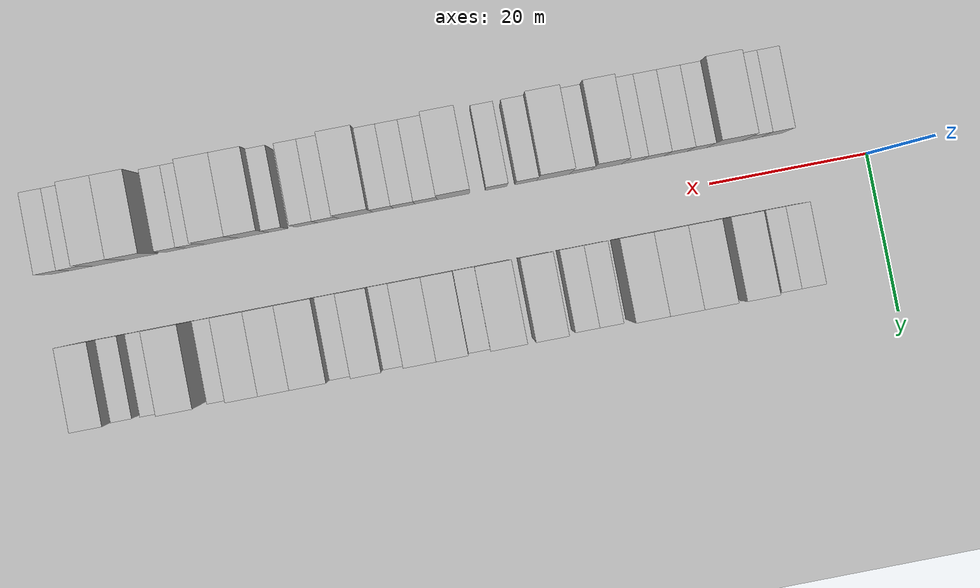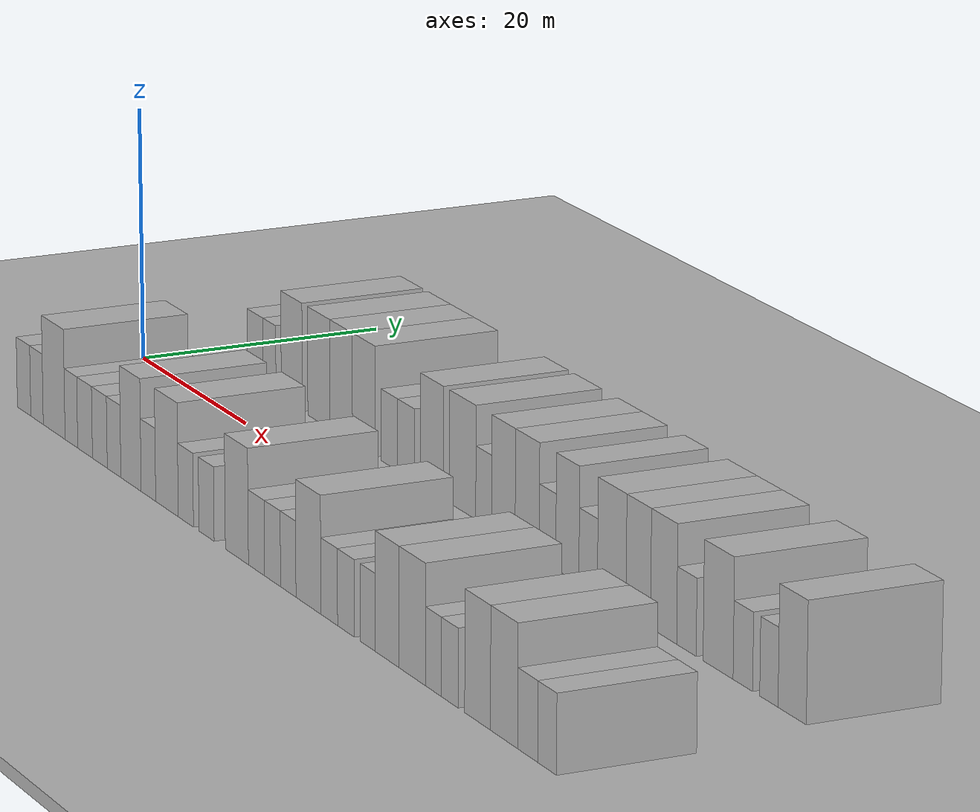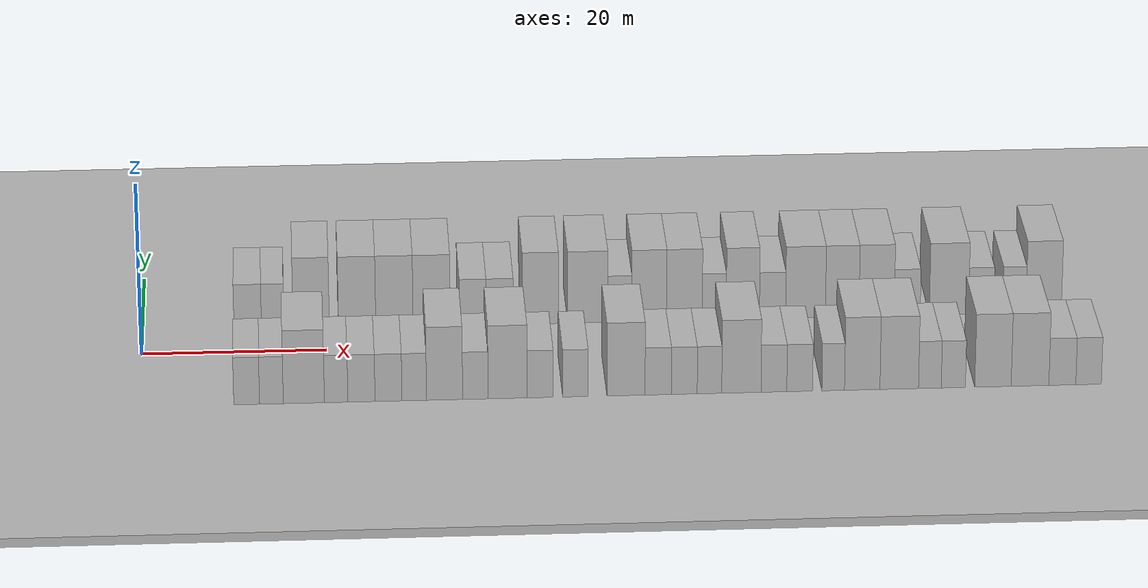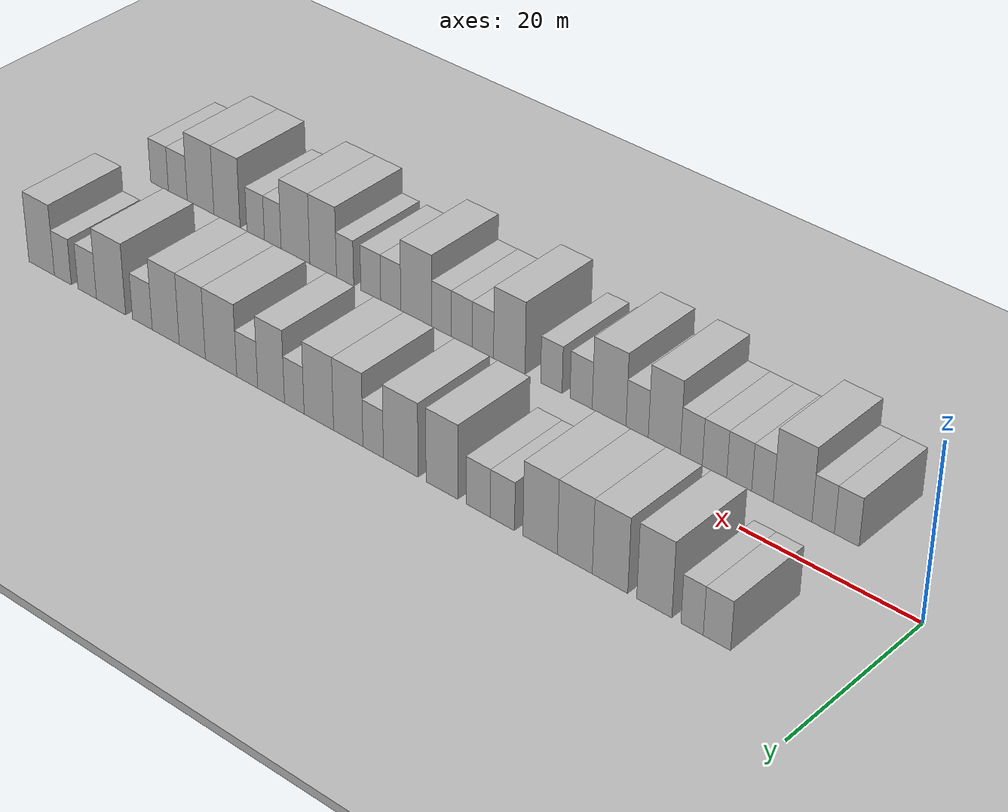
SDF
<sdf version="1.6">
 <world name="default">
  <include><name>ground_plane_1</name><uri>model://HANNAS_ground_plane</uri></include>
  <include>
   <name>ground_plane_2</name>
   <uri>model://HANNAS_ground_plane</uri>
   <pose>100 0 0  0 0 0</pose>
  </include>
  <model name="building_1">
   <static>1</static>
   <pose>11.4937 9.5000 0 0.000000 0.000000 1.570796</pose>
   <link name="link">
    <pose>0 0 3.00 0 0 0</pose>
    <collision name="collision"><geometry><box><size>10.0000 2.9875 6.0000</size></box></geometry></collision>
    <visual name="visual">
     <cast_shadows>0</cast_shadows>
     <geometry><box><size>10.0000 2.9875 6.0000</size></box></geometry>
     <material>
      <script>
       <uri>model://HANNAS_wall/materials/scripts</uri>
       <uri>model://HANNAS_wall/materials/textures</uri>
       <name>vrc/HANNAS_wall</name>
      </script>
     </material>
    </visual>
   </link>
  </model>
  <model name="building_2">
   <static>1</static>
   <pose>14.2155 9.5000 0 0.000000 0.000000 1.570796</pose>
   <link name="link">
    <pose>0 0 3.00 0 0 0</pose>
    <collision name="collision"><geometry><box><size>10.0000 2.4561 6.0000</size></box></geometry></collision>
    <visual name="visual">
     <cast_shadows>0</cast_shadows>
     <geometry><box><size>10.0000 2.4561 6.0000</size></box></geometry>
     <material>
      <script>
       <uri>model://HANNAS_wall/materials/scripts</uri>
       <uri>model://HANNAS_wall/materials/textures</uri>
       <name>vrc/HANNAS_wall</name>
      </script>
     </material>
    </visual>
   </link>
  </model>
  <model name="building_3">
   <static>1</static>
   <pose>18.4167 9.5000 0 0.000000 0.000000 1.570796</pose>
   <link name="link">
    <pose>0 0 4.50 0 0 0</pose>
    <collision name="collision"><geometry><box><size>10.0000 3.9462 9.0000</size></box></geometry></collision>
    <visual name="visual">
     <cast_shadows>0</cast_shadows>
     <geometry><box><size>10.0000 3.9462 9.0000</size></box></geometry>
     <material>
      <script>
       <uri>model://HANNAS_wall/materials/scripts</uri>
       <uri>model://HANNAS_wall/materials/textures</uri>
       <name>vrc/HANNAS_wall</name>
      </script>
     </material>
    </visual>
   </link>
  </model>
  <model name="building_4">
   <static>1</static>
   <pose>23.4204 9.5000 0 0.000000 0.000000 1.570796</pose>
   <link name="link">
    <pose>0 0 4.50 0 0 0</pose>
    <collision name="collision"><geometry><box><size>10.0000 4.0612 9.0000</size></box></geometry></collision>
    <visual name="visual">
     <cast_shadows>0</cast_shadows>
     <geometry><box><size>10.0000 4.0612 9.0000</size></box></geometry>
     <material>
      <script>
       <uri>model://HANNAS_wall/materials/scripts</uri>
       <uri>model://HANNAS_wall/materials/textures</uri>
       <name>vrc/HANNAS_wall</name>
      </script>
     </material>
    </visual>
   </link>
  </model>
  <model name="building_5">
   <static>1</static>
   <pose>27.4896 9.5000 0 0.000000 0.000000 1.570796</pose>
   <link name="link">
    <pose>0 0 4.50 0 0 0</pose>
    <collision name="collision"><geometry><box><size>10.0000 4.0774 9.0000</size></box></geometry></collision>
    <visual name="visual">
     <cast_shadows>0</cast_shadows>
     <geometry><box><size>10.0000 4.0774 9.0000</size></box></geometry>
     <material>
      <script>
       <uri>model://HANNAS_wall/materials/scripts</uri>
       <uri>model://HANNAS_wall/materials/textures</uri>
       <name>vrc/HANNAS_wall</name>
      </script>
     </material>
    </visual>
   </link>
  </model>
  <model name="building_6">
   <static>1</static>
   <pose>31.5653 9.5000 0 0.000000 0.000000 1.570796</pose>
   <link name="link">
    <pose>0 0 4.50 0 0 0</pose>
    <collision name="collision"><geometry><box><size>10.0000 4.0740 9.0000</size></box></geometry></collision>
    <visual name="visual">
     <cast_shadows>0</cast_shadows>
     <geometry><box><size>10.0000 4.0740 9.0000</size></box></geometry>
     <material>
      <script>
       <uri>model://HANNAS_wall/materials/scripts</uri>
       <uri>model://HANNAS_wall/materials/textures</uri>
       <name>vrc/HANNAS_wall</name>
      </script>
     </material>
    </visual>
   </link>
  </model>
  <model name="building_7">
   <static>1</static>
   <pose>36.0594 9.5000 0 0.000000 0.000000 1.570796</pose>
   <link name="link">
    <pose>0 0 3.00 0 0 0</pose>
    <collision name="collision"><geometry><box><size>10.0000 2.9140 6.0000</size></box></geometry></collision>
    <visual name="visual">
     <cast_shadows>0</cast_shadows>
     <geometry><box><size>10.0000 2.9140 6.0000</size></box></geometry>
     <material>
      <script>
       <uri>model://HANNAS_wall/materials/scripts</uri>
       <uri>model://HANNAS_wall/materials/textures</uri>
       <name>vrc/HANNAS_wall</name>
      </script>
     </material>
    </visual>
   </link>
  </model>
  <model name="building_8">
   <static>1</static>
   <pose>38.9993 9.5000 0 0.000000 0.000000 1.570796</pose>
   <link name="link">
    <pose>0 0 3.00 0 0 0</pose>
    <collision name="collision"><geometry><box><size>10.0000 2.9658 6.0000</size></box></geometry></collision>
    <visual name="visual">
     <cast_shadows>0</cast_shadows>
     <geometry><box><size>10.0000 2.9658 6.0000</size></box></geometry>
     <material>
      <script>
       <uri>model://HANNAS_wall/materials/scripts</uri>
       <uri>model://HANNAS_wall/materials/textures</uri>
       <name>vrc/HANNAS_wall</name>
      </script>
     </material>
    </visual>
   </link>
  </model>
  <model name="building_9">
   <static>1</static>
   <pose>43.4593 9.5000 0 0.000000 0.000000 1.570796</pose>
   <link name="link">
    <pose>0 0 4.50 0 0 0</pose>
    <collision name="collision"><geometry><box><size>10.0000 3.9543 9.0000</size></box></geometry></collision>
    <visual name="visual">
     <cast_shadows>0</cast_shadows>
     <geometry><box><size>10.0000 3.9543 9.0000</size></box></geometry>
     <material>
      <script>
       <uri>model://HANNAS_wall/materials/scripts</uri>
       <uri>model://HANNAS_wall/materials/textures</uri>
       <name>vrc/HANNAS_wall</name>
      </script>
     </material>
    </visual>
   </link>
  </model>
  <model name="building_10">
   <static>1</static>
   <pose>48.6359 9.5000 0 0.000000 0.000000 1.570796</pose>
   <link name="link">
    <pose>0 0 4.50 0 0 0</pose>
    <collision name="collision"><geometry><box><size>10.0000 4.3989 9.0000</size></box></geometry></collision>
    <visual name="visual">
     <cast_shadows>0</cast_shadows>
     <geometry><box><size>10.0000 4.3989 9.0000</size></box></geometry>
     <material>
      <script>
       <uri>model://HANNAS_wall/materials/scripts</uri>
       <uri>model://HANNAS_wall/materials/textures</uri>
       <name>vrc/HANNAS_wall</name>
      </script>
     </material>
    </visual>
   </link>
  </model>
  <model name="building_11">
   <static>1</static>
   <pose>52.1533 9.5000 0 0.000000 0.000000 1.570796</pose>
   <link name="link">
    <pose>0 0 3.00 0 0 0</pose>
    <collision name="collision"><geometry><box><size>10.0000 2.6358 6.0000</size></box></geometry></collision>
    <visual name="visual">
     <cast_shadows>0</cast_shadows>
     <geometry><box><size>10.0000 2.6358 6.0000</size></box></geometry>
     <material>
      <script>
       <uri>model://HANNAS_wall/materials/scripts</uri>
       <uri>model://HANNAS_wall/materials/textures</uri>
       <name>vrc/HANNAS_wall</name>
      </script>
     </material>
    </visual>
   </link>
  </model>
  <model name="building_12">
   <static>1</static>
   <pose>55.3849 9.5000 0 0.000000 0.000000 1.570796</pose>
   <link name="link">
    <pose>0 0 4.50 0 0 0</pose>
    <collision name="collision"><geometry><box><size>10.0000 3.8273 9.0000</size></box></geometry></collision>
    <visual name="visual">
     <cast_shadows>0</cast_shadows>
     <geometry><box><size>10.0000 3.8273 9.0000</size></box></geometry>
     <material>
      <script>
       <uri>model://HANNAS_wall/materials/scripts</uri>
       <uri>model://HANNAS_wall/materials/textures</uri>
       <name>vrc/HANNAS_wall</name>
      </script>
     </material>
    </visual>
   </link>
  </model>
  <model name="building_13">
   <static>1</static>
   <pose>59.2486 9.5000 0 0.000000 0.000000 1.570796</pose>
   <link name="link">
    <pose>0 0 4.50 0 0 0</pose>
    <collision name="collision"><geometry><box><size>10.0000 3.9002 9.0000</size></box></geometry></collision>
    <visual name="visual">
     <cast_shadows>0</cast_shadows>
     <geometry><box><size>10.0000 3.9002 9.0000</size></box></geometry>
     <material>
      <script>
       <uri>model://HANNAS_wall/materials/scripts</uri>
       <uri>model://HANNAS_wall/materials/textures</uri>
       <name>vrc/HANNAS_wall</name>
      </script>
     </material>
    </visual>
   </link>
  </model>
  <model name="building_14">
   <static>1</static>
   <pose>62.5120 9.5000 0 0.000000 0.000000 1.570796</pose>
   <link name="link">
    <pose>0 0 3.00 0 0 0</pose>
    <collision name="collision"><geometry><box><size>10.0000 2.6267 6.0000</size></box></geometry></collision>
    <visual name="visual">
     <cast_shadows>0</cast_shadows>
     <geometry><box><size>10.0000 2.6267 6.0000</size></box></geometry>
     <material>
      <script>
       <uri>model://HANNAS_wall/materials/scripts</uri>
       <uri>model://HANNAS_wall/materials/textures</uri>
       <name>vrc/HANNAS_wall</name>
      </script>
     </material>
    </visual>
   </link>
  </model>
  <model name="building_15">
   <static>1</static>
   <pose>65.6415 9.5000 0 0.000000 0.000000 1.570796</pose>
   <link name="link">
    <pose>0 0 4.50 0 0 0</pose>
    <collision name="collision"><geometry><box><size>10.0000 3.6323 9.0000</size></box></geometry></collision>
    <visual name="visual">
     <cast_shadows>0</cast_shadows>
     <geometry><box><size>10.0000 3.6323 9.0000</size></box></geometry>
     <material>
      <script>
       <uri>model://HANNAS_wall/materials/scripts</uri>
       <uri>model://HANNAS_wall/materials/textures</uri>
       <name>vrc/HANNAS_wall</name>
      </script>
     </material>
    </visual>
   </link>
  </model>
  <model name="building_16">
   <static>1</static>
   <pose>68.8954 9.5000 0 0.000000 0.000000 1.570796</pose>
   <link name="link">
    <pose>0 0 3.00 0 0 0</pose>
    <collision name="collision"><geometry><box><size>10.0000 2.8755 6.0000</size></box></geometry></collision>
    <visual name="visual">
     <cast_shadows>0</cast_shadows>
     <geometry><box><size>10.0000 2.8755 6.0000</size></box></geometry>
     <material>
      <script>
       <uri>model://HANNAS_wall/materials/scripts</uri>
       <uri>model://HANNAS_wall/materials/textures</uri>
       <name>vrc/HANNAS_wall</name>
      </script>
     </material>
    </visual>
   </link>
  </model>
  <model name="building_17">
   <static>1</static>
   <pose>72.5236 9.5000 0 0.000000 0.000000 1.570796</pose>
   <link name="link">
    <pose>0 0 4.50 0 0 0</pose>
    <collision name="collision"><geometry><box><size>10.0000 4.3809 9.0000</size></box></geometry></collision>
    <visual name="visual">
     <cast_shadows>0</cast_shadows>
     <geometry><box><size>10.0000 4.3809 9.0000</size></box></geometry>
     <material>
      <script>
       <uri>model://HANNAS_wall/materials/scripts</uri>
       <uri>model://HANNAS_wall/materials/textures</uri>
       <name>vrc/HANNAS_wall</name>
      </script>
     </material>
    </visual>
   </link>
  </model>
  <model name="building_18">
   <static>1</static>
   <pose>76.5592 9.5000 0 0.000000 0.000000 1.570796</pose>
   <link name="link">
    <pose>0 0 4.50 0 0 0</pose>
    <collision name="collision"><geometry><box><size>10.0000 3.6902 9.0000</size></box></geometry></collision>
    <visual name="visual">
     <cast_shadows>0</cast_shadows>
     <geometry><box><size>10.0000 3.6902 9.0000</size></box></geometry>
     <material>
      <script>
       <uri>model://HANNAS_wall/materials/scripts</uri>
       <uri>model://HANNAS_wall/materials/textures</uri>
       <name>vrc/HANNAS_wall</name>
      </script>
     </material>
    </visual>
   </link>
  </model>
  <model name="building_19">
   <static>1</static>
   <pose>80.3442 9.5000 0 0.000000 0.000000 1.570796</pose>
   <link name="link">
    <pose>0 0 4.50 0 0 0</pose>
    <collision name="collision"><geometry><box><size>10.0000 3.8799 9.0000</size></box></geometry></collision>
    <visual name="visual">
     <cast_shadows>0</cast_shadows>
     <geometry><box><size>10.0000 3.8799 9.0000</size></box></geometry>
     <material>
      <script>
       <uri>model://HANNAS_wall/materials/scripts</uri>
       <uri>model://HANNAS_wall/materials/textures</uri>
       <name>vrc/HANNAS_wall</name>
      </script>
     </material>
    </visual>
   </link>
  </model>
  <model name="building_20">
   <static>1</static>
   <pose>83.7181 9.5000 0 0.000000 0.000000 1.570796</pose>
   <link name="link">
    <pose>0 0 3.00 0 0 0</pose>
    <collision name="collision"><geometry><box><size>10.0000 2.8679 6.0000</size></box></geometry></collision>
    <visual name="visual">
     <cast_shadows>0</cast_shadows>
     <geometry><box><size>10.0000 2.8679 6.0000</size></box></geometry>
     <material>
      <script>
       <uri>model://HANNAS_wall/materials/scripts</uri>
       <uri>model://HANNAS_wall/materials/textures</uri>
       <name>vrc/HANNAS_wall</name>
      </script>
     </material>
    </visual>
   </link>
  </model>
  <model name="building_21">
   <static>1</static>
   <pose>88.3135 9.5000 0 0.000000 0.000000 1.570796</pose>
   <link name="link">
    <pose>0 0 4.50 0 0 0</pose>
    <collision name="collision"><geometry><box><size>10.0000 4.3228 9.0000</size></box></geometry></collision>
    <visual name="visual">
     <cast_shadows>0</cast_shadows>
     <geometry><box><size>10.0000 4.3228 9.0000</size></box></geometry>
     <material>
      <script>
       <uri>model://HANNAS_wall/materials/scripts</uri>
       <uri>model://HANNAS_wall/materials/textures</uri>
       <name>vrc/HANNAS_wall</name>
      </script>
     </material>
    </visual>
   </link>
  </model>
  <model name="building_22">
   <static>1</static>
   <pose>91.8621 9.5000 0 0.000000 0.000000 1.570796</pose>
   <link name="link">
    <pose>0 0 3.00 0 0 0</pose>
    <collision name="collision"><geometry><box><size>10.0000 2.7743 6.0000</size></box></geometry></collision>
    <visual name="visual">
     <cast_shadows>0</cast_shadows>
     <geometry><box><size>10.0000 2.7743 6.0000</size></box></geometry>
     <material>
      <script>
       <uri>model://HANNAS_wall/materials/scripts</uri>
       <uri>model://HANNAS_wall/materials/textures</uri>
       <name>vrc/HANNAS_wall</name>
      </script>
     </material>
    </visual>
   </link>
  </model>
  <model name="building_23">
   <static>1</static>
   <pose>95.5293 9.5000 0 0.000000 0.000000 1.570796</pose>
   <link name="link">
    <pose>0 0 3.00 0 0 0</pose>
    <collision name="collision"><geometry><box><size>10.0000 2.5601 6.0000</size></box></geometry></collision>
    <visual name="visual">
     <cast_shadows>0</cast_shadows>
     <geometry><box><size>10.0000 2.5601 6.0000</size></box></geometry>
     <material>
      <script>
       <uri>model://HANNAS_wall/materials/scripts</uri>
       <uri>model://HANNAS_wall/materials/textures</uri>
       <name>vrc/HANNAS_wall</name>
      </script>
     </material>
    </visual>
   </link>
  </model>
  <model name="building_24">
   <static>1</static>
   <pose>98.7638 9.5000 0 0.000000 0.000000 1.570796</pose>
   <link name="link">
    <pose>0 0 4.50 0 0 0</pose>
    <collision name="collision"><geometry><box><size>10.0000 3.9090 9.0000</size></box></geometry></collision>
    <visual name="visual">
     <cast_shadows>0</cast_shadows>
     <geometry><box><size>10.0000 3.9090 9.0000</size></box></geometry>
     <material>
      <script>
       <uri>model://HANNAS_wall/materials/scripts</uri>
       <uri>model://HANNAS_wall/materials/textures</uri>
       <name>vrc/HANNAS_wall</name>
      </script>
     </material>
    </visual>
   </link>
  </model>
  <model name="building_52">
   <static>1</static>
   <pose>11.3659 -9.5000 0 0.000000 0.000000 1.570796</pose>
   <link name="link">
    <pose>0 0 3.00 0 0 0</pose>
    <collision name="collision"><geometry><box><size>10.0000 2.7319 6.0000</size></box></geometry></collision>
    <visual name="visual">
     <cast_shadows>0</cast_shadows>
     <geometry><box><size>10.0000 2.7319 6.0000</size></box></geometry>
     <material>
      <script>
       <uri>model://HANNAS_wall/materials/scripts</uri>
       <uri>model://HANNAS_wall/materials/textures</uri>
       <name>vrc/HANNAS_wall</name>
      </script>
     </material>
    </visual>
   </link>
  </model>
  <model name="building_53">
   <static>1</static>
   <pose>13.9911 -9.5000 0 0.000000 0.000000 1.570796</pose>
   <link name="link">
    <pose>0 0 3.00 0 0 0</pose>
    <collision name="collision"><geometry><box><size>10.0000 2.5186 6.0000</size></box></geometry></collision>
    <visual name="visual">
     <cast_shadows>0</cast_shadows>
     <geometry><box><size>10.0000 2.5186 6.0000</size></box></geometry>
     <material>
      <script>
       <uri>model://HANNAS_wall/materials/scripts</uri>
       <uri>model://HANNAS_wall/materials/textures</uri>
       <name>vrc/HANNAS_wall</name>
      </script>
     </material>
    </visual>
   </link>
  </model>
  <model name="building_54">
   <static>1</static>
   <pose>17.4318 -9.5000 0 0.000000 0.000000 1.570796</pose>
   <link name="link">
    <pose>0 0 4.50 0 0 0</pose>
    <collision name="collision"><geometry><box><size>10.0000 4.3627 9.0000</size></box></geometry></collision>
    <visual name="visual">
     <cast_shadows>0</cast_shadows>
     <geometry><box><size>10.0000 4.3627 9.0000</size></box></geometry>
     <material>
      <script>
       <uri>model://HANNAS_wall/materials/scripts</uri>
       <uri>model://HANNAS_wall/materials/textures</uri>
       <name>vrc/HANNAS_wall</name>
      </script>
     </material>
    </visual>
   </link>
  </model>
  <model name="building_55">
   <static>1</static>
   <pose>20.8571 -9.5000 0 0.000000 0.000000 1.570796</pose>
   <link name="link">
    <pose>0 0 3.00 0 0 0</pose>
    <collision name="collision"><geometry><box><size>10.0000 2.4880 6.0000</size></box></geometry></collision>
    <visual name="visual">
     <cast_shadows>0</cast_shadows>
     <geometry><box><size>10.0000 2.4880 6.0000</size></box></geometry>
     <material>
      <script>
       <uri>model://HANNAS_wall/materials/scripts</uri>
       <uri>model://HANNAS_wall/materials/textures</uri>
       <name>vrc/HANNAS_wall</name>
      </script>
     </material>
    </visual>
   </link>
  </model>
  <model name="building_56">
   <static>1</static>
   <pose>23.5439 -9.5000 0 0.000000 0.000000 1.570796</pose>
   <link name="link">
    <pose>0 0 3.00 0 0 0</pose>
    <collision name="collision"><geometry><box><size>10.0000 2.8854 6.0000</size></box></geometry></collision>
    <visual name="visual">
     <cast_shadows>0</cast_shadows>
     <geometry><box><size>10.0000 2.8854 6.0000</size></box></geometry>
     <material>
      <script>
       <uri>model://HANNAS_wall/materials/scripts</uri>
       <uri>model://HANNAS_wall/materials/textures</uri>
       <name>vrc/HANNAS_wall</name>
      </script>
     </material>
    </visual>
   </link>
  </model>
  <model name="building_57">
   <static>1</static>
   <pose>26.4178 -9.5000 0 0.000000 0.000000 1.570796</pose>
   <link name="link">
    <pose>0 0 3.00 0 0 0</pose>
    <collision name="collision"><geometry><box><size>10.0000 2.8624 6.0000</size></box></geometry></collision>
    <visual name="visual">
     <cast_shadows>0</cast_shadows>
     <geometry><box><size>10.0000 2.8624 6.0000</size></box></geometry>
     <material>
      <script>
       <uri>model://HANNAS_wall/materials/scripts</uri>
       <uri>model://HANNAS_wall/materials/textures</uri>
       <name>vrc/HANNAS_wall</name>
      </script>
     </material>
    </visual>
   </link>
  </model>
  <model name="building_58">
   <static>1</static>
   <pose>29.1541 -9.5000 0 0.000000 0.000000 1.570796</pose>
   <link name="link">
    <pose>0 0 3.00 0 0 0</pose>
    <collision name="collision"><geometry><box><size>10.0000 2.6103 6.0000</size></box></geometry></collision>
    <visual name="visual">
     <cast_shadows>0</cast_shadows>
     <geometry><box><size>10.0000 2.6103 6.0000</size></box></geometry>
     <material>
      <script>
       <uri>model://HANNAS_wall/materials/scripts</uri>
       <uri>model://HANNAS_wall/materials/textures</uri>
       <name>vrc/HANNAS_wall</name>
      </script>
     </material>
    </visual>
   </link>
  </model>
  <model name="building_59">
   <static>1</static>
   <pose>32.3824 -9.5000 0 0.000000 0.000000 1.570796</pose>
   <link name="link">
    <pose>0 0 4.50 0 0 0</pose>
    <collision name="collision"><geometry><box><size>10.0000 3.8461 9.0000</size></box></geometry></collision>
    <visual name="visual">
     <cast_shadows>0</cast_shadows>
     <geometry><box><size>10.0000 3.8461 9.0000</size></box></geometry>
     <material>
      <script>
       <uri>model://HANNAS_wall/materials/scripts</uri>
       <uri>model://HANNAS_wall/materials/textures</uri>
       <name>vrc/HANNAS_wall</name>
      </script>
     </material>
    </visual>
   </link>
  </model>
  <model name="building_60">
   <static>1</static>
   <pose>35.6603 -9.5000 0 0.000000 0.000000 1.570796</pose>
   <link name="link">
    <pose>0 0 3.00 0 0 0</pose>
    <collision name="collision"><geometry><box><size>10.0000 2.7098 6.0000</size></box></geometry></collision>
    <visual name="visual">
     <cast_shadows>0</cast_shadows>
     <geometry><box><size>10.0000 2.7098 6.0000</size></box></geometry>
     <material>
      <script>
       <uri>model://HANNAS_wall/materials/scripts</uri>
       <uri>model://HANNAS_wall/materials/textures</uri>
       <name>vrc/HANNAS_wall</name>
      </script>
     </material>
    </visual>
   </link>
  </model>
  <model name="building_61">
   <static>1</static>
   <pose>39.1015 -9.5000 0 0.000000 0.000000 1.570796</pose>
   <link name="link">
    <pose>0 0 4.50 0 0 0</pose>
    <collision name="collision"><geometry><box><size>10.0000 4.1725 9.0000</size></box></geometry></collision>
    <visual name="visual">
     <cast_shadows>0</cast_shadows>
     <geometry><box><size>10.0000 4.1725 9.0000</size></box></geometry>
     <material>
      <script>
       <uri>model://HANNAS_wall/materials/scripts</uri>
       <uri>model://HANNAS_wall/materials/textures</uri>
       <name>vrc/HANNAS_wall</name>
      </script>
     </material>
    </visual>
   </link>
  </model>
  <model name="building_62">
   <static>1</static>
   <pose>42.5727 -9.5000 0 0.000000 0.000000 1.570796</pose>
   <link name="link">
    <pose>0 0 3.00 0 0 0</pose>
    <collision name="collision"><geometry><box><size>10.0000 2.7698 6.0000</size></box></geometry></collision>
    <visual name="visual">
     <cast_shadows>0</cast_shadows>
     <geometry><box><size>10.0000 2.7698 6.0000</size></box></geometry>
     <material>
      <script>
       <uri>model://HANNAS_wall/materials/scripts</uri>
       <uri>model://HANNAS_wall/materials/textures</uri>
       <name>vrc/HANNAS_wall</name>
      </script>
     </material>
    </visual>
   </link>
  </model>
  <model name="building_63">
   <static>1</static>
   <pose>46.3197 -9.5000 0 0.000000 0.000000 1.570796</pose>
   <link name="link">
    <pose>0 0 3.00 0 0 0</pose>
    <collision name="collision"><geometry><box><size>10.0000 2.7242 6.0000</size></box></geometry></collision>
    <visual name="visual">
     <cast_shadows>0</cast_shadows>
     <geometry><box><size>10.0000 2.7242 6.0000</size></box></geometry>
     <material>
      <script>
       <uri>model://HANNAS_wall/materials/scripts</uri>
       <uri>model://HANNAS_wall/materials/textures</uri>
       <name>vrc/HANNAS_wall</name>
      </script>
     </material>
    </visual>
   </link>
  </model>
  <model name="building_64">
   <static>1</static>
   <pose>51.7155 -9.5000 0 0.000000 0.000000 1.570796</pose>
   <link name="link">
    <pose>0 0 4.50 0 0 0</pose>
    <collision name="collision"><geometry><box><size>10.0000 4.0674 9.0000</size></box></geometry></collision>
    <visual name="visual">
     <cast_shadows>0</cast_shadows>
     <geometry><box><size>10.0000 4.0674 9.0000</size></box></geometry>
     <material>
      <script>
       <uri>model://HANNAS_wall/materials/scripts</uri>
       <uri>model://HANNAS_wall/materials/textures</uri>
       <name>vrc/HANNAS_wall</name>
      </script>
     </material>
    </visual>
   </link>
  </model>
  <model name="building_65">
   <static>1</static>
   <pose>55.1573 -9.5000 0 0.000000 0.000000 1.570796</pose>
   <link name="link">
    <pose>0 0 3.00 0 0 0</pose>
    <collision name="collision"><geometry><box><size>10.0000 2.8162 6.0000</size></box></geometry></collision>
    <visual name="visual">
     <cast_shadows>0</cast_shadows>
     <geometry><box><size>10.0000 2.8162 6.0000</size></box></geometry>
     <material>
      <script>
       <uri>model://HANNAS_wall/materials/scripts</uri>
       <uri>model://HANNAS_wall/materials/textures</uri>
       <name>vrc/HANNAS_wall</name>
      </script>
     </material>
    </visual>
   </link>
  </model>
  <model name="building_66">
   <static>1</static>
   <pose>57.9385 -9.5000 0 0.000000 0.000000 1.570796</pose>
   <link name="link">
    <pose>0 0 3.00 0 0 0</pose>
    <collision name="collision"><geometry><box><size>10.0000 2.7462 6.0000</size></box></geometry></collision>
    <visual name="visual">
     <cast_shadows>0</cast_shadows>
     <geometry><box><size>10.0000 2.7462 6.0000</size></box></geometry>
     <material>
      <script>
       <uri>model://HANNAS_wall/materials/scripts</uri>
       <uri>model://HANNAS_wall/materials/textures</uri>
       <name>vrc/HANNAS_wall</name>
      </script>
     </material>
    </visual>
   </link>
  </model>
  <model name="building_67">
   <static>1</static>
   <pose>60.6240 -9.5000 0 0.000000 0.000000 1.570796</pose>
   <link name="link">
    <pose>0 0 3.00 0 0 0</pose>
    <collision name="collision"><geometry><box><size>10.0000 2.6246 6.0000</size></box></geometry></collision>
    <visual name="visual">
     <cast_shadows>0</cast_shadows>
     <geometry><box><size>10.0000 2.6246 6.0000</size></box></geometry>
     <material>
      <script>
       <uri>model://HANNAS_wall/materials/scripts</uri>
       <uri>model://HANNAS_wall/materials/textures</uri>
       <name>vrc/HANNAS_wall</name>
      </script>
     </material>
    </visual>
   </link>
  </model>
  <model name="building_68">
   <static>1</static>
   <pose>64.0348 -9.5000 0 0.000000 0.000000 1.570796</pose>
   <link name="link">
    <pose>0 0 4.50 0 0 0</pose>
    <collision name="collision"><geometry><box><size>10.0000 4.1970 9.0000</size></box></geometry></collision>
    <visual name="visual">
     <cast_shadows>0</cast_shadows>
     <geometry><box><size>10.0000 4.1970 9.0000</size></box></geometry>
     <material>
      <script>
       <uri>model://HANNAS_wall/materials/scripts</uri>
       <uri>model://HANNAS_wall/materials/textures</uri>
       <name>vrc/HANNAS_wall</name>
      </script>
     </material>
    </visual>
   </link>
  </model>
  <model name="building_69">
   <static>1</static>
   <pose>67.5133 -9.5000 0 0.000000 0.000000 1.570796</pose>
   <link name="link">
    <pose>0 0 3.00 0 0 0</pose>
    <collision name="collision"><geometry><box><size>10.0000 2.7600 6.0000</size></box></geometry></collision>
    <visual name="visual">
     <cast_shadows>0</cast_shadows>
     <geometry><box><size>10.0000 2.7600 6.0000</size></box></geometry>
     <material>
      <script>
       <uri>model://HANNAS_wall/materials/scripts</uri>
       <uri>model://HANNAS_wall/materials/textures</uri>
       <name>vrc/HANNAS_wall</name>
      </script>
     </material>
    </visual>
   </link>
  </model>
  <model name="building_70">
   <static>1</static>
   <pose>70.2713 -9.5000 0 0.000000 0.000000 1.570796</pose>
   <link name="link">
    <pose>0 0 3.00 0 0 0</pose>
    <collision name="collision"><geometry><box><size>10.0000 2.7561 6.0000</size></box></geometry></collision>
    <visual name="visual">
     <cast_shadows>0</cast_shadows>
     <geometry><box><size>10.0000 2.7561 6.0000</size></box></geometry>
     <material>
      <script>
       <uri>model://HANNAS_wall/materials/scripts</uri>
       <uri>model://HANNAS_wall/materials/textures</uri>
       <name>vrc/HANNAS_wall</name>
      </script>
     </material>
    </visual>
   </link>
  </model>
  <model name="building_71">
   <static>1</static>
   <pose>73.8579 -9.5000 0 0.000000 0.000000 1.570796</pose>
   <link name="link">
    <pose>0 0 3.00 0 0 0</pose>
    <collision name="collision"><geometry><box><size>10.0000 2.4171 6.0000</size></box></geometry></collision>
    <visual name="visual">
     <cast_shadows>0</cast_shadows>
     <geometry><box><size>10.0000 2.4171 6.0000</size></box></geometry>
     <material>
      <script>
       <uri>model://HANNAS_wall/materials/scripts</uri>
       <uri>model://HANNAS_wall/materials/textures</uri>
       <name>vrc/HANNAS_wall</name>
      </script>
     </material>
    </visual>
   </link>
  </model>
  <model name="building_72">
   <static>1</static>
   <pose>76.9652 -9.5000 0 0.000000 0.000000 1.570796</pose>
   <link name="link">
    <pose>0 0 4.50 0 0 0</pose>
    <collision name="collision"><geometry><box><size>10.0000 3.7974 9.0000</size></box></geometry></collision>
    <visual name="visual">
     <cast_shadows>0</cast_shadows>
     <geometry><box><size>10.0000 3.7974 9.0000</size></box></geometry>
     <material>
      <script>
       <uri>model://HANNAS_wall/materials/scripts</uri>
       <uri>model://HANNAS_wall/materials/textures</uri>
       <name>vrc/HANNAS_wall</name>
      </script>
     </material>
    </visual>
   </link>
  </model>
  <model name="building_73">
   <static>1</static>
   <pose>80.9320 -9.5000 0 0.000000 0.000000 1.570796</pose>
   <link name="link">
    <pose>0 0 4.50 0 0 0</pose>
    <collision name="collision"><geometry><box><size>10.0000 4.1363 9.0000</size></box></geometry></collision>
    <visual name="visual">
     <cast_shadows>0</cast_shadows>
     <geometry><box><size>10.0000 4.1363 9.0000</size></box></geometry>
     <material>
      <script>
       <uri>model://HANNAS_wall/materials/scripts</uri>
       <uri>model://HANNAS_wall/materials/textures</uri>
       <name>vrc/HANNAS_wall</name>
      </script>
     </material>
    </visual>
   </link>
  </model>
  <model name="building_74">
   <static>1</static>
   <pose>84.2201 -9.5000 0 0.000000 0.000000 1.570796</pose>
   <link name="link">
    <pose>0 0 3.00 0 0 0</pose>
    <collision name="collision"><geometry><box><size>10.0000 2.4400 6.0000</size></box></geometry></collision>
    <visual name="visual">
     <cast_shadows>0</cast_shadows>
     <geometry><box><size>10.0000 2.4400 6.0000</size></box></geometry>
     <material>
      <script>
       <uri>model://HANNAS_wall/materials/scripts</uri>
       <uri>model://HANNAS_wall/materials/textures</uri>
       <name>vrc/HANNAS_wall</name>
      </script>
     </material>
    </visual>
   </link>
  </model>
  <model name="building_75">
   <static>1</static>
   <pose>86.7389 -9.5000 0 0.000000 0.000000 1.570796</pose>
   <link name="link">
    <pose>0 0 3.00 0 0 0</pose>
    <collision name="collision"><geometry><box><size>10.0000 2.5975 6.0000</size></box></geometry></collision>
    <visual name="visual">
     <cast_shadows>0</cast_shadows>
     <geometry><box><size>10.0000 2.5975 6.0000</size></box></geometry>
     <material>
      <script>
       <uri>model://HANNAS_wall/materials/scripts</uri>
       <uri>model://HANNAS_wall/materials/textures</uri>
       <name>vrc/HANNAS_wall</name>
      </script>
     </material>
    </visual>
   </link>
  </model>
  <model name="building_76">
   <static>1</static>
   <pose>90.9922 -9.5000 0 0.000000 0.000000 1.570796</pose>
   <link name="link">
    <pose>0 0 4.50 0 0 0</pose>
    <collision name="collision"><geometry><box><size>10.0000 3.9092 9.0000</size></box></geometry></collision>
    <visual name="visual">
     <cast_shadows>0</cast_shadows>
     <geometry><box><size>10.0000 3.9092 9.0000</size></box></geometry>
     <material>
      <script>
       <uri>model://HANNAS_wall/materials/scripts</uri>
       <uri>model://HANNAS_wall/materials/textures</uri>
       <name>vrc/HANNAS_wall</name>
      </script>
     </material>
    </visual>
   </link>
  </model>
  <model name="building_77">
   <static>1</static>
   <pose>94.9740 -9.5000 0 0.000000 0.000000 1.570796</pose>
   <link name="link">
    <pose>0 0 4.50 0 0 0</pose>
    <collision name="collision"><geometry><box><size>10.0000 4.0544 9.0000</size></box></geometry></collision>
    <visual name="visual">
     <cast_shadows>0</cast_shadows>
     <geometry><box><size>10.0000 4.0544 9.0000</size></box></geometry>
     <material>
      <script>
       <uri>model://HANNAS_wall/materials/scripts</uri>
       <uri>model://HANNAS_wall/materials/textures</uri>
       <name>vrc/HANNAS_wall</name>
      </script>
     </material>
    </visual>
   </link>
  </model>
  <model name="building_78">
   <static>1</static>
   <pose>98.4488 -9.5000 0 0.000000 0.000000 1.570796</pose>
   <link name="link">
    <pose>0 0 3.00 0 0 0</pose>
    <collision name="collision"><geometry><box><size>10.0000 2.8952 6.0000</size></box></geometry></collision>
    <visual name="visual">
     <cast_shadows>0</cast_shadows>
     <geometry><box><size>10.0000 2.8952 6.0000</size></box></geometry>
     <material>
      <script>
       <uri>model://HANNAS_wall/materials/scripts</uri>
       <uri>model://HANNAS_wall/materials/textures</uri>
       <name>vrc/HANNAS_wall</name>
      </script>
     </material>
    </visual>
   </link>
  </model>
  <model name="building_79">
   <static>1</static>
   <pose>101.2691 -9.5000 0 0.000000 0.000000 1.570796</pose>
   <link name="link">
    <pose>0 0 3.00 0 0 0</pose>
    <collision name="collision"><geometry><box><size>10.0000 2.7455 6.0000</size></box></geometry></collision>
    <visual name="visual">
     <cast_shadows>0</cast_shadows>
     <geometry><box><size>10.0000 2.7455 6.0000</size></box></geometry>
     <material>
      <script>
       <uri>model://HANNAS_wall/materials/scripts</uri>
       <uri>model://HANNAS_wall/materials/textures</uri>
       <name>vrc/HANNAS_wall</name>
      </script>
     </material>
    </visual>
   </link>
  </model>
 </world>
</sdf>
